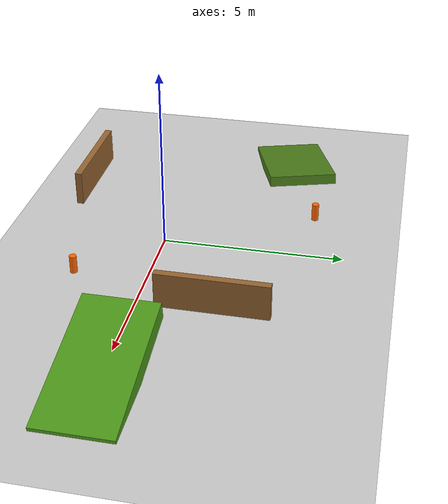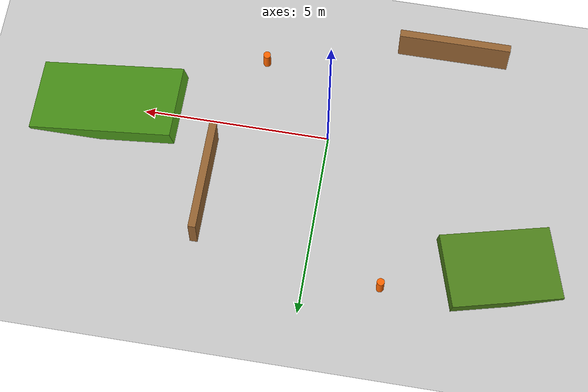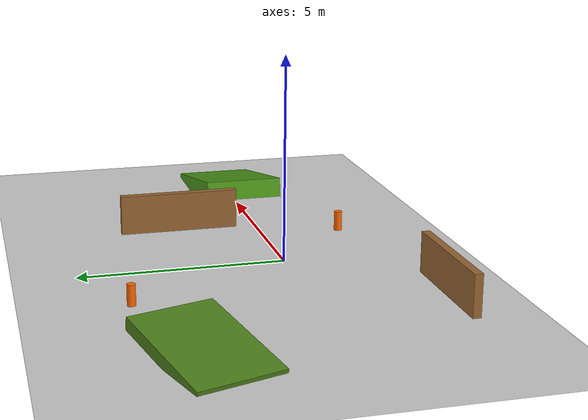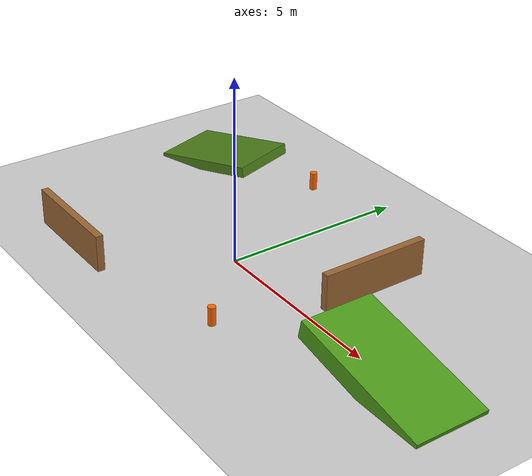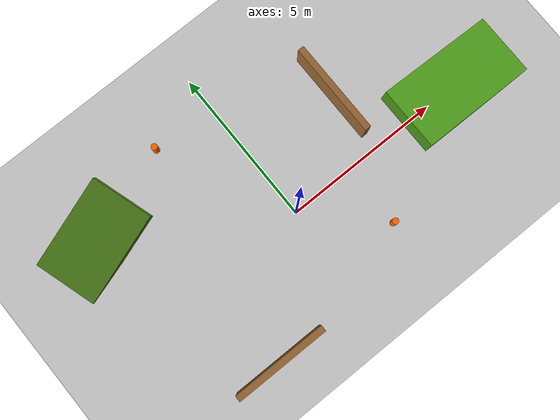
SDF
<?xml version="1.0" ?>
<sdf version="1.6">
  <world name="robot_world">

    <!-- Physics -->
    <physics type="ode">
      <real_time_update_rate>1000.0</real_time_update_rate>
      <max_step_size>0.001</max_step_size>
      <real_time_factor>1</real_time_factor>
    </physics>

    <!-- Plugins -->
    <plugin name="gazebo_ros_state" filename="libgazebo_ros_state.so">
      <ros><namespace>/gazebo</namespace></ros>
      <update_rate>1.0</update_rate>
    </plugin>

    <!-- Sun / Lighting -->
    <include>
      <uri>model://sun</uri>
    </include>

    <!-- Ground plane -->
    <include>
      <uri>model://ground_plane</uri>
    </include>

    <!-- === Terrain Hills (using heightmap-style boxes) === -->

    <!-- Ramp 1 -->
    <model name="ramp1">
      <static>true</static>
      <link name="link">
        <collision name="col">
          <geometry><box><size>4 2 0.5</size></box></geometry>
        </collision>
        <visual name="vis">
          <geometry><box><size>4 2 0.5</size></box></geometry>
          <material><ambient>0.3 0.6 0.1 1</ambient><diffuse>0.3 0.6 0.1 1</diffuse></material>
        </visual>
      </link>
      <pose>6 0 0.25 0 0.2 0</pose>
    </model>

    <!-- Ramp 2 -->
    <model name="ramp2">
      <static>true</static>
      <link name="link">
        <collision name="col">
          <geometry><box><size>3 2 0.3</size></box></geometry>
        </collision>
        <visual name="vis">
          <geometry><box><size>3 2 0.3</size></box></geometry>
          <material><ambient>0.3 0.5 0.1 1</ambient><diffuse>0.3 0.5 0.1 1</diffuse></material>
        </visual>
      </link>
      <pose>-5 3 0.15 0 -0.15 0.3</pose>
    </model>

    <!-- Wall obstacle 1 -->
    <model name="wall1">
      <static>true</static>
      <link name="link">
        <collision name="col">
          <geometry><box><size>0.2 3 1.0</size></box></geometry>
        </collision>
        <visual name="vis">
          <geometry><box><size>0.2 3 1.0</size></box></geometry>
          <material><ambient>0.6 0.4 0.2 1</ambient><diffuse>0.6 0.4 0.2 1</diffuse></material>
        </visual>
      </link>
      <pose>3 2 0.5 0 0 0</pose>
    </model>

    <!-- Wall obstacle 2 -->
    <model name="wall2">
      <static>true</static>
      <link name="link">
        <collision name="col">
          <geometry><box><size>3 0.2 1.0</size></box></geometry>
        </collision>
        <visual name="vis">
          <geometry><box><size>3 0.2 1.0</size></box></geometry>
          <material><ambient>0.6 0.4 0.2 1</ambient><diffuse>0.6 0.4 0.2 1</diffuse></material>
        </visual>
      </link>
      <pose>-3 -3 0.5 0 0 0</pose>
    </model>

    <!-- Cones / markers -->
    <model name="cone1">
      <static>true</static>
      <link name="link">
        <collision name="col">
          <geometry><cylinder><radius>0.1</radius><length>0.5</length></cylinder></geometry>
        </collision>
        <visual name="vis">
          <geometry><cylinder><radius>0.1</radius><length>0.5</length></cylinder></geometry>
          <material><ambient>1 0.4 0 1</ambient><diffuse>1 0.4 0 1</diffuse></material>
        </visual>
      </link>
      <pose>2 -2 0.25 0 0 0</pose>
    </model>

    <model name="cone2">
      <static>true</static>
      <link name="link">
        <collision name="col">
          <geometry><cylinder><radius>0.1</radius><length>0.5</length></cylinder></geometry>
        </collision>
        <visual name="vis">
          <geometry><cylinder><radius>0.1</radius><length>0.5</length></cylinder></geometry>
          <material><ambient>1 0.4 0 1</ambient><diffuse>1 0.4 0 1</diffuse></material>
        </visual>
      </link>
      <pose>-2 4 0.25 0 0 0</pose>
    </model>

    <!-- GUI camera view -->
    <gui fullscreen="0">
      <camera name="user_camera">
        <pose>-8 -8 6 0 0.5 0.8</pose>
        <view_controller>orbit</view_controller>
      </camera>
    </gui>

  </world>
</sdf>
